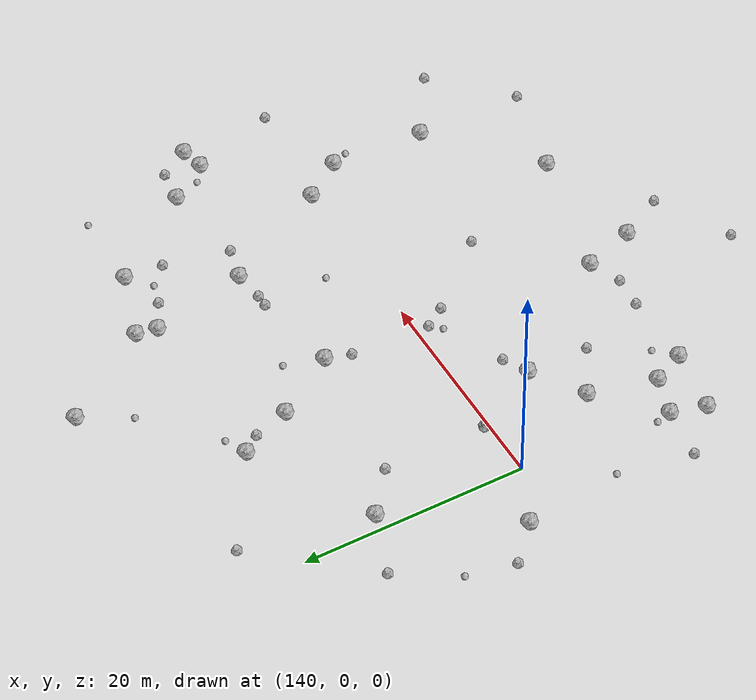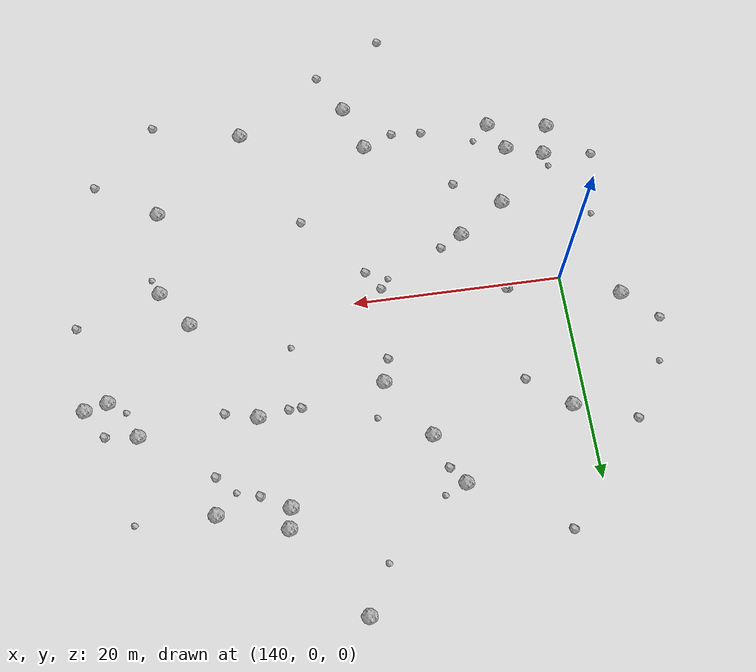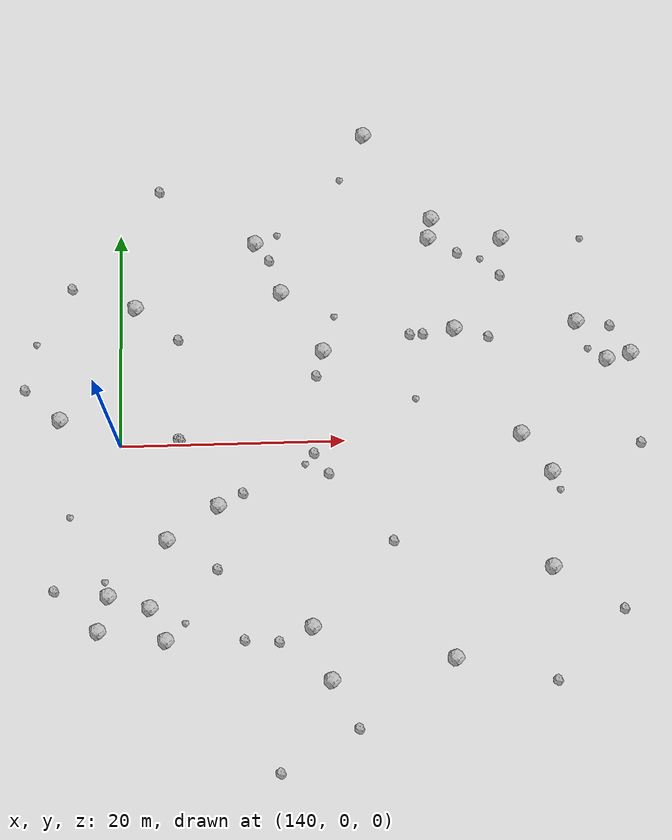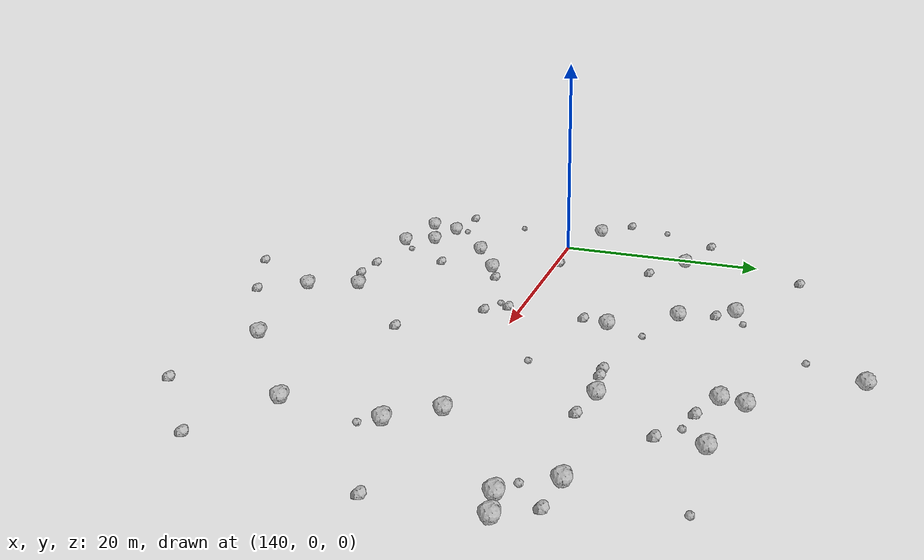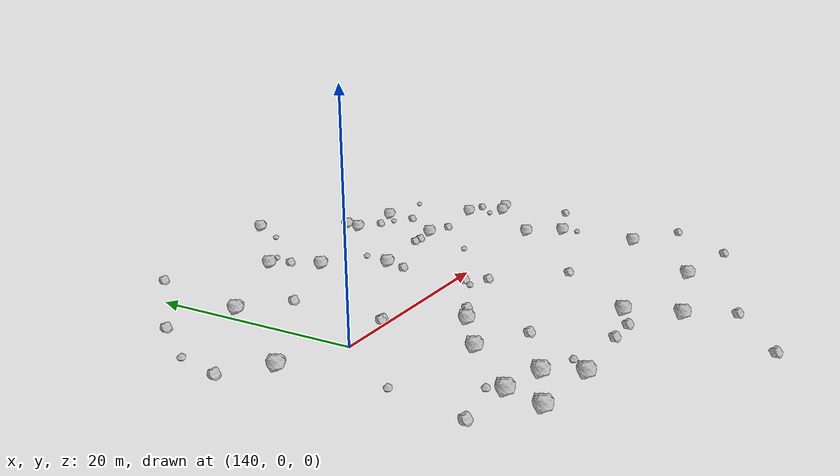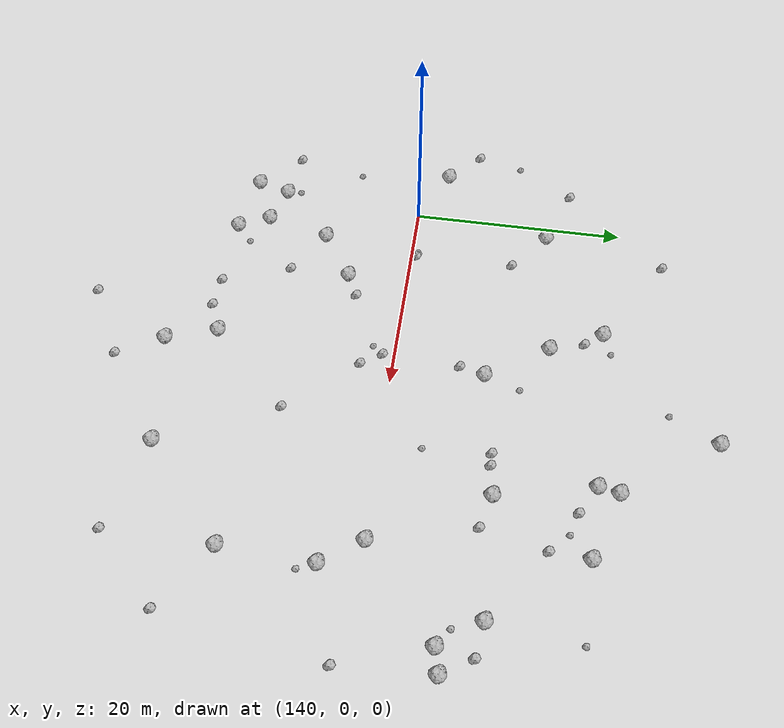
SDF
<sdf version="1.6">
 <world name="default">
  <include><uri>model://sun</uri></include>
  <model name="rock1_4_2">
   <include><uri>model://rock1</uri><pose>139.0248194820931 -13.527447543947698 0.5 0 0 0</pose></include>
  </model>
  <model name="rock1_4_3">
   <include><uri>model://rock1</uri><pose>144.15049287291836 -8.670341258417164 0.5 0 0 0</pose></include>
  </model>
  <model name="rock1_4_4">
   <include><uri>model://rock1</uri><pose>142.64168295724232 -14.646510637709941 0.5 0 0 0</pose></include>
  </model>
  <model name="rock1_4_5">
   <include><uri>model://rock1</uri><pose>185.92098714522115 7.428631035898498 0.5 0 0 0</pose></include>
  </model>
  <model name="rock1_4_6">
   <include><uri>model://rock1</uri><pose>168.5005287355125 20.82379493993532 0.5 0 0 0</pose></include>
  </model>
  <model name="rock1_4_7">
   <include><uri>model://rock1</uri><pose>168.1472232528294 18.946470634030632 0.5 0 0 0</pose></include>
  </model>
  <model name="rock1_4_8">
   <include><uri>model://rock1</uri><pose>134.65051966706994 2.494244883880789 0.5 0 0 0</pose></include>
  </model>
  <model name="rock1_4_9">
   <include><uri>model://rock1</uri><pose>158.2651163259917 8.343955232754794 0.5 0 0 0</pose></include>
  </model>
  <model name="rock1_4_10">
   <include><uri>model://rock1</uri><pose>170.17201219053663 10.171240008376365 0.5 0 0 0</pose></include>
  </model>
  <model name="rock1_4_11">
   <include><uri>model://rock1</uri><pose>181.20300044058376 10.538952325720729 0.5 0 0 0</pose></include>
  </model>
  <model name="rock1_4_12">
   <include><uri>model://rock1</uri><pose>138.14338248265273 -16.591850731640978 0.5 0 0 0</pose></include>
  </model>
  <model name="rock1_4_13">
   <include><uri>model://rock1</uri><pose>152.32731560486016 18.82755459859157 0.5 0 0 0</pose></include>
  </model>
  <model name="rock1_4_14">
   <include><uri>model://rock1</uri><pose>154.5815898340523 14.004187401632429 0.5 0 0 0</pose></include>
  </model>
  <model name="rock1_4_15">
   <include><uri>model://rock1</uri><pose>183.75615645479192 6.928604917518321 0.5 0 0 0</pose></include>
  </model>
  <model name="rock1_4_16">
   <include><uri>model://rock1</uri><pose>156.7385128298992 -16.654171396736594 0.5 0 0 0</pose></include>
  </model>
  <model name="rock1_4_17">
   <include><uri>model://rock1</uri><pose>178.2381357462618 -3.3976837413576852 0.5 0 0 0</pose></include>
  </model>
  <model name="rock1_4_18">
   <include><uri>model://rock1</uri><pose>158.27130598728314 -21.325041005091933 0.5 0 0 0</pose></include>
  </model>
  <model name="rock1_4_19">
   <include><uri>model://rock1</uri><pose>175.68553917206688 0.17360154919107273 0.5 0 0 0</pose></include>
  </model>
  <model name="rock1_4_20">
   <include><uri>model://rock1</uri><pose>148.68814992623888 -5.705159550064426 0.5 0 0 0</pose></include>
  </model>
  <model name="rock1_4_21">
   <include><uri>model://rock1</uri><pose>168.9853825973667 -19.673516039886955 0.5 0 0 0</pose></include>
  </model>
  <model name="rock1_4_22">
   <include><uri>model://rock1</uri><pose>144.01805509389231 -17.544037511988808 0.5 0 0 0</pose></include>
  </model>
  <model name="rock1_4_23">
   <include><uri>model://rock1</uri><pose>162.54502438296137 29.304979849556318 0.5 0 0 0</pose></include>
  </model>
  <model name="rock1_4_24">
   <include><uri>model://rock1</uri><pose>174.81864863105505 18.734743869902417 0.5 0 0 0</pose></include>
  </model>
  <model name="rock1_4_25">
   <include><uri>model://rock1</uri><pose>177.83373024150325 -11.920742166130658 0.5 0 0 0</pose></include>
  </model>
  <model name="rock1_4_26">
   <include><uri>model://rock1</uri><pose>141.39129578571746 12.858987209162123 0.5 0 0 0</pose></include>
  </model>
  <model name="rock2_4_0">
   <include><uri>model://rock2</uri><pose>174.53585544708955 15.229970443152958 0.3 0 0 0</pose></include>
  </model>
  <model name="rock2_4_1">
   <include><uri>model://rock2</uri><pose>166.11494597239727 9.77226733962511 0.3 0 0 0</pose></include>
  </model>
  <model name="rock2_4_2">
   <include><uri>model://rock2</uri><pose>158.48125180954432 -2.989425626622431 0.3 0 0 0</pose></include>
  </model>
  <model name="rock2_4_3">
   <include><uri>model://rock2</uri><pose>164.00151773680923 -9.197429072129019 0.3 0 0 0</pose></include>
  </model>
  <model name="rock2_4_4">
   <include><uri>model://rock2</uri><pose>157.20603015023124 -1.0965379967402704 0.3 0 0 0</pose></include>
  </model>
  <model name="rock2_4_5">
   <include><uri>model://rock2</uri><pose>183.79841108900197 -15.759308587732663 0.3 0 0 0</pose></include>
  </model>
  <model name="rock2_4_6">
   <include><uri>model://rock2</uri><pose>157.57335566139136 6.073135999728102 0.3 0 0 0</pose></include>
  </model>
  <model name="rock2_4_7">
   <include><uri>model://rock2</uri><pose>177.65807522079092 -21.804989107687764 0.3 0 0 0</pose></include>
  </model>
  <model name="rock2_4_8">
   <include><uri>model://rock2</uri><pose>160.47609795130475 -25.489332816327174 0.3 0 0 0</pose></include>
  </model>
  <model name="rock2_4_9">
   <include><uri>model://rock2</uri><pose>153.70706817510862 -29.070859594152093 0.3 0 0 0</pose></include>
  </model>
  <model name="rock2_4_10">
   <include><uri>model://rock2</uri><pose>153.80045734309215 -17.861839169044792 0.3 0 0 0</pose></include>
  </model>
  <model name="rock2_4_11">
   <include><uri>model://rock2</uri><pose>145.15637730734773 0.5254608360109607 0.3 0 0 0</pose></include>
  </model>
  <model name="rock2_4_12">
   <include><uri>model://rock2</uri><pose>145.21311062752704 9.796711686799092 0.3 0 0 0</pose></include>
  </model>
  <model name="rock2_4_13">
   <include><uri>model://rock2</uri><pose>145.34230102233158 0.4752414779747838 0.3 0 0 0</pose></include>
  </model>
  <model name="rock2_4_14">
   <include><uri>model://rock2</uri><pose>153.55232440571817 17.205839598511105 0.3 0 0 0</pose></include>
  </model>
  <model name="rock2_4_15">
   <include><uri>model://rock2</uri><pose>148.53139808365705 -11.352827559992654 0.3 0 0 0</pose></include>
  </model>
  <model name="rock2_4_16">
   <include><uri>model://rock2</uri><pose>135.62987721261982 14.915487965901505 0.3 0 0 0</pose></include>
  </model>
  <model name="rock2_4_17">
   <include><uri>model://rock2</uri><pose>150.8524130169426 -4.580249613132832 0.3 0 0 0</pose></include>
  </model>
  <model name="rock2_4_18">
   <include><uri>model://rock2</uri><pose>170.74950115060332 17.51055484968652 0.3 0 0 0</pose></include>
  </model>
  <model name="rock2_4_19">
   <include><uri>model://rock2</uri><pose>134.27605511521725 -12.923320007085646 0.3 0 0 0</pose></include>
  </model>
  <model name="rock2_4_20">
   <include><uri>model://rock2</uri><pose>173.20318993104422 9.382697115240319 0.3 0 0 0</pose></include>
  </model>
  <model name="rock2_4_21">
   <include><uri>model://rock2</uri><pose>184.22005275013964 10.129143189766417 0.3 0 0 0</pose></include>
  </model>
  <model name="rock2_4_22">
   <include><uri>model://rock2</uri><pose>186.29198499695184 -0.8897793511202998 0.3 0 0 0</pose></include>
  </model>
  <model name="rock2_4_23">
   <include><uri>model://rock2</uri><pose>167.30298609335554 9.784809387019052 0.3 0 0 0</pose></include>
  </model>
  <model name="rock2_4_24">
   <include><uri>model://rock2</uri><pose>143.56642577701004 24.225044374250324 0.3 0 0 0</pose></include>
  </model>
  <model name="rock2_4_25">
   <include><uri>model://rock2</uri><pose>150.81083032380133 -17.631575019460023 0.3 0 0 0</pose></include>
  </model>
  <model name="rock2_4_26">
   <include><uri>model://rock2</uri><pose>131.4676769043155 5.414077185483627 0.3 0 0 0</pose></include>
  </model>
  <model name="rock3_4_0">
   <include><uri>model://rock3</uri><pose>154.30974625226946 19.638191531908028 0.2 0 0 0</pose></include>
  </model>
  <model name="rock3_4_1">
   <include><uri>model://rock3</uri><pose>182.10783425112822 7.992632705935961 0.2 0 0 0</pose></include>
  </model>
  <model name="rock3_4_2">
   <include><uri>model://rock3</uri><pose>135.58539680137517 -6.381484463485506 0.2 0 0 0</pose></include>
  </model>
  <model name="rock3_4_3">
   <include><uri>model://rock3</uri><pose>156.39216745070217 -2.098008181938347 0.2 0 0 0</pose></include>
  </model>
  <model name="rock3_4_4">
   <include><uri>model://rock3</uri><pose>178.86926714219143 -5.019508467290972 0.2 0 0 0</pose></include>
  </model>
  <model name="rock3_4_5">
   <include><uri>model://rock3</uri><pose>145.68390075486596 -16.033544492491146 0.2 0 0 0</pose></include>
  </model>
  <model name="rock3_4_6">
   <include><uri>model://rock3</uri><pose>166.42151801161793 3.6950798278944887 0.2 0 0 0</pose></include>
  </model>
  <model name="rock3_4_7">
   <include><uri>model://rock3</uri><pose>160.1923476296232 24.946881499694925 0.2 0 0 0</pose></include>
  </model>
  <model name="rock3_4_8">
   <include><uri>model://rock3</uri><pose>159.319320376547 11.63875586951859 0.2 0 0 0</pose></include>
  </model>
  <model name="rock3_4_9">
   <include><uri>model://rock3</uri><pose>132.43673664707694 9.670600194017354 0.2 0 0 0</pose></include>
  </model>
  <model name="rock3_4_10">
   <include><uri>model://rock3</uri><pose>138.6990029890582 -12.243102947420198 0.2 0 0 0</pose></include>
  </model>
  <model name="rock3_4_11">
   <include><uri>model://rock3</uri><pose>182.0296567452325 18.5970053068043 0.2 0 0 0</pose></include>
  </model>
  <model name="rock3_4_12">
   <include><uri>model://rock3</uri><pose>172.80587540311225 16.868909483054253 0.2 0 0 0</pose></include>
  </model>
 </world>
</sdf>
